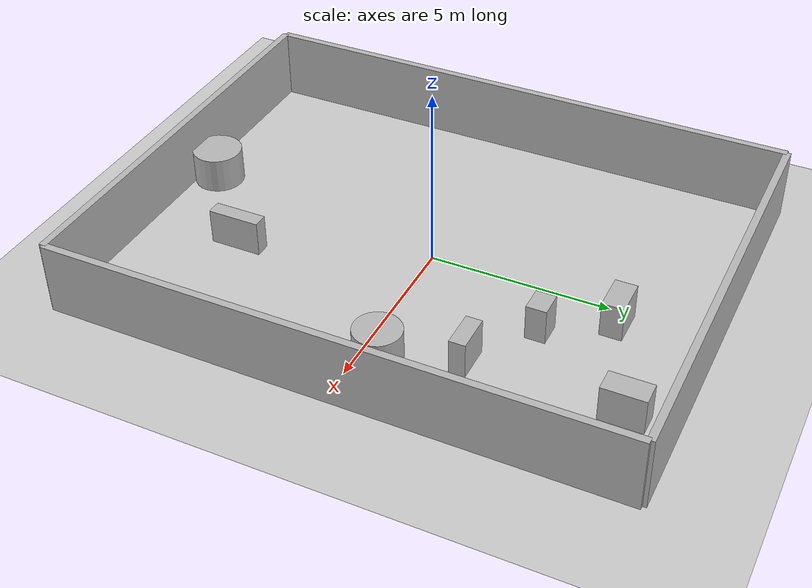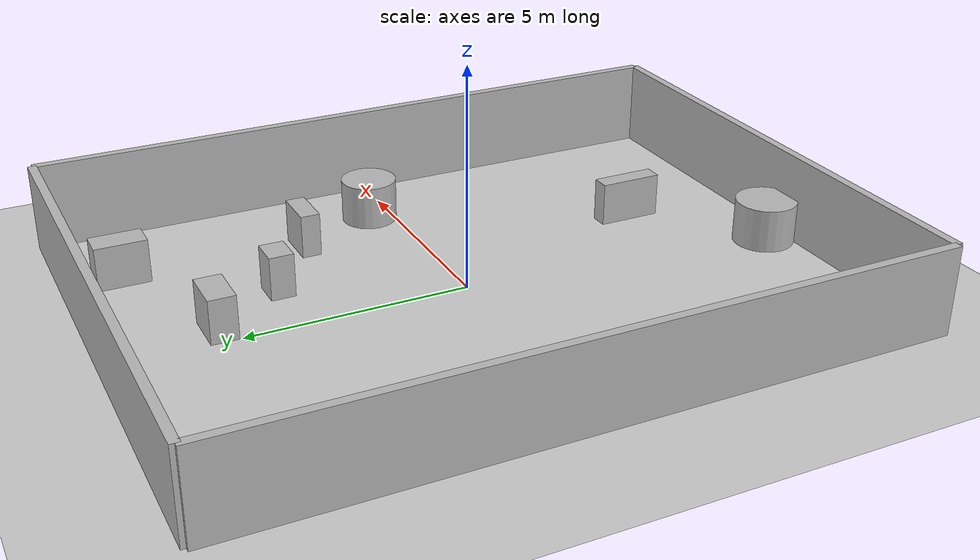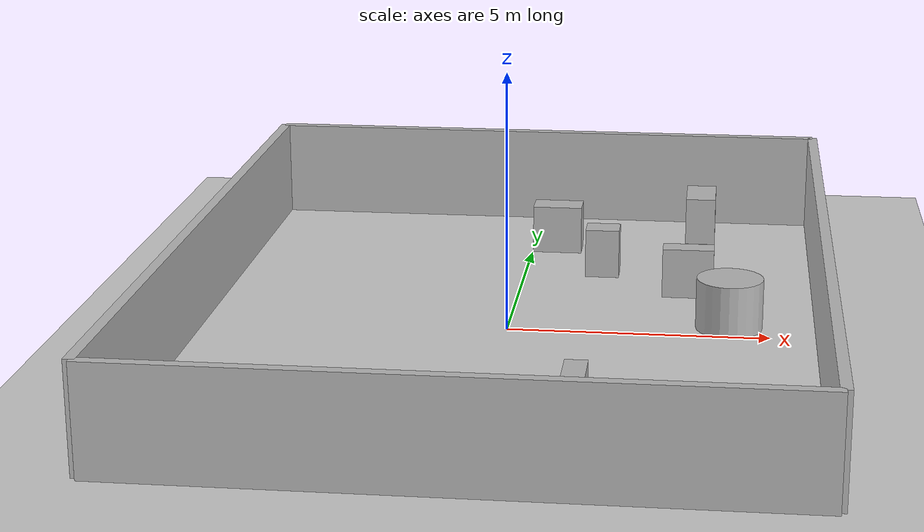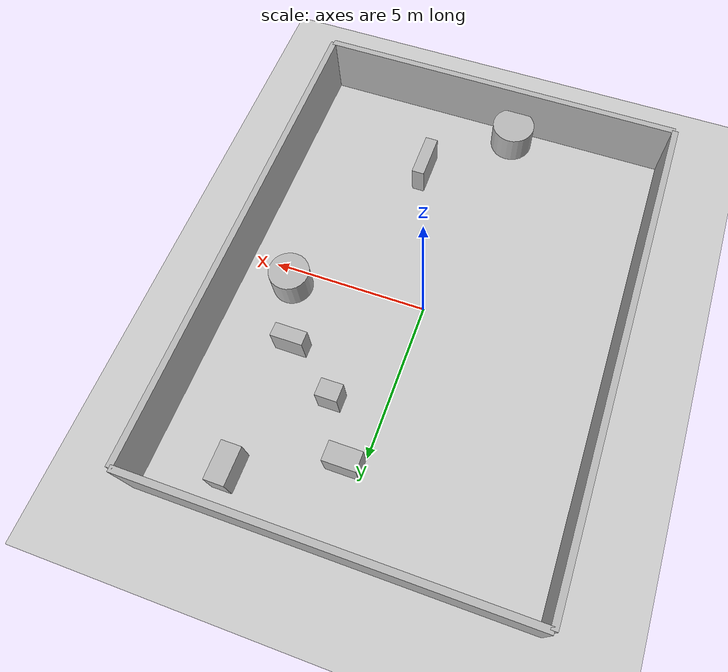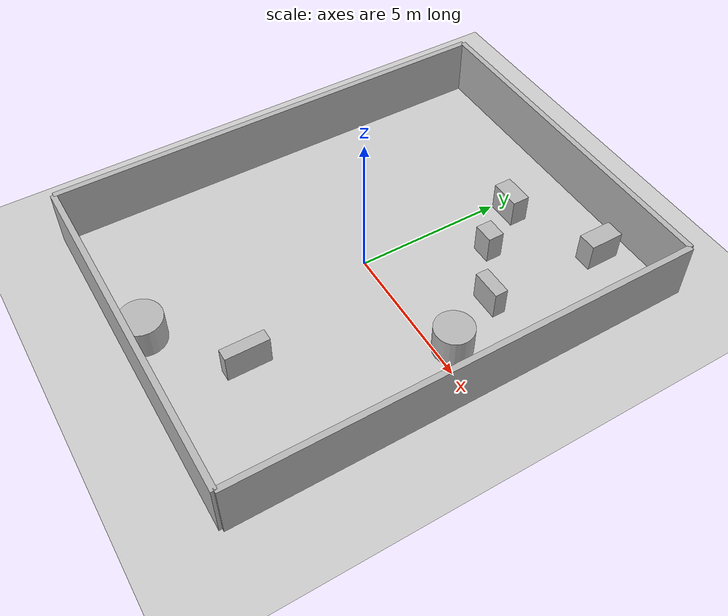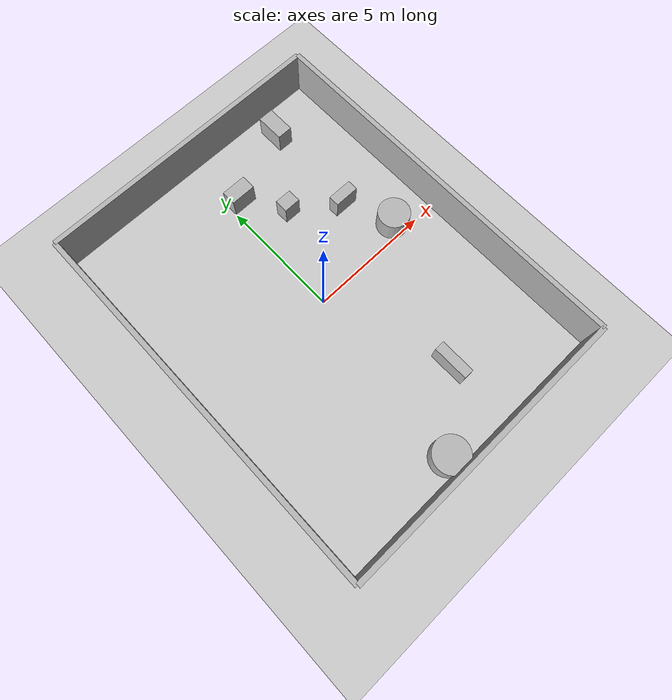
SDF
<?xml version="1.0"?>
<sdf version="1.6">
  <world name="env_91">

    <include><uri>model://ground_plane</uri></include>
    <include><uri>model://sun</uri></include>

    <!-- WALLS -->
    <model name="wall_north"><static>true</static><pose>0 7.816999190220784 1 0 0 0</pose>
      <link name="link"><collision name="collision">
        <geometry><box><size>11.921241175624603 0.2 2</size></box></geometry>
      </collision><visual name="visual">
        <geometry><box><size>11.921241175624603 0.2 2</size></box></geometry>
      </visual></link>
    </model>

    <model name="wall_south"><static>true</static><pose>0 -7.816999190220784 1 0 0 0</pose>
      <link name="link"><collision name="collision">
        <geometry><box><size>11.921241175624603 0.2 2</size></box></geometry>
      </collision><visual name="visual">
        <geometry><box><size>11.921241175624603 0.2 2</size></box></geometry>
      </visual></link>
    </model>

    <model name="wall_east"><static>true</static><pose>5.9606205878123015 0 1 0 0 1.57</pose>
      <link name="link"><collision name="collision">
        <geometry><box><size>15.633998380441568 0.2 2</size></box></geometry>
      </collision><visual name="visual">
        <geometry><box><size>15.633998380441568 0.2 2</size></box></geometry>
      </visual></link>
    </model>

    <model name="wall_west"><static>true</static><pose>-5.9606205878123015 0 1 0 0 1.57</pose>
      <link name="link"><collision name="collision">
        <geometry><box><size>15.633998380441568 0.2 2</size></box></geometry>
      </collision><visual name="visual">
        <geometry><box><size>15.633998380441568 0.2 2</size></box></geometry>
      </visual></link>
    </model>

    <!-- SENSOR -->

    <model name="lidar_sensor">
      <static>true</static>
      <pose>-0.4264690081206197 -6.522603781260327 0.4 0 0 0</pose>
      <link name="link">
        <sensor name="lidar" type="ray">
          <pose>0 0 0 0 0 0</pose>
          <visualize>true</visualize>
          <always_on>true</always_on>
          <update_rate>10</update_rate>
          <ray>
            <scan><horizontal>
              <samples>90</samples>
              <resolution>1</resolution>
              <min_angle>-3.14159</min_angle>
              <max_angle>3.14159</max_angle>
            </horizontal></scan>
            <range><min>0.15</min><max>20.0</max><resolution>0.01</resolution></range>
          </ray>
          <plugin name="lidar_plugin" filename="liblidar_plugin.so"/>
        </sensor>
      </link>
    </model>

    <!-- OBSTACLES -->

    <model name="obstacle_0">
      <static>true</static>
      <pose>1.5922123631173717 3.7047446139722737 0.5 0 0 0</pose>
      <link name="link">
        <collision name="collision">
          <geometry><box><size>0.69 0.55 1.0</size></box></geometry>
        </collision>
        <visual name="visual">
          <geometry><box><size>0.69 0.55 1.0</size></box></geometry>
        </visual>
      </link>
    </model>

    <model name="obstacle_1">
      <static>true</static>
      <pose>4.221341852427957 0.533931407768323 0.5 0 0 0</pose>
      <link name="link">
        <collision name="collision">
          <geometry><cylinder><radius>0.64</radius><length>1.0</length></cylinder></geometry>
        </collision>
        <visual name="visual">
          <geometry><cylinder><radius>0.64</radius><length>1.0</length></cylinder></geometry>
        </visual>
      </link>
    </model>

    <model name="obstacle_2">
      <static>true</static>
      <pose>3.383949427732186 2.474507719622446 0.5 0 0 0</pose>
      <link name="link">
        <collision name="collision">
          <geometry><box><size>1.02 0.44 1.0</size></box></geometry>
        </collision>
        <visual name="visual">
          <geometry><box><size>1.02 0.44 1.0</size></box></geometry>
        </visual>
      </link>
    </model>

    <model name="obstacle_3">
      <static>true</static>
      <pose>3.5621652146187115 6.595954262109384 0.5 0 0 0</pose>
      <link name="link">
        <collision name="collision">
          <geometry><box><size>0.63 1.16 1.0</size></box></geometry>
        </collision>
        <visual name="visual">
          <geometry><box><size>0.63 1.16 1.0</size></box></geometry>
        </visual>
      </link>
    </model>

    <model name="obstacle_4">
      <static>true</static>
      <pose>0.5235197749606062 5.359795224791595 0.5 0 0 0</pose>
      <link name="link">
        <collision name="collision">
          <geometry><box><size>1.03 0.6 1.0</size></box></geometry>
        </collision>
        <visual name="visual">
          <geometry><box><size>1.03 0.6 1.0</size></box></geometry>
        </visual>
      </link>
    </model>

    <model name="obstacle_5">
      <static>true</static>
      <pose>-0.8147578624520122 -7.16609844644819 0.5 0 0 0</pose>
      <link name="link">
        <collision name="collision">
          <geometry><cylinder><radius>0.7</radius><length>1.0</length></cylinder></geometry>
        </collision>
        <visual name="visual">
          <geometry><cylinder><radius>0.7</radius><length>1.0</length></cylinder></geometry>
        </visual>
      </link>
    </model>

    <model name="obstacle_6">
      <static>true</static>
      <pose>1.6542728211320448 -4.980077843358771 0.5 0 0 0</pose>
      <link name="link">
        <collision name="collision">
          <geometry><box><size>0.41 1.45 1.0</size></box></geometry>
        </collision>
        <visual name="visual">
          <geometry><box><size>0.41 1.45 1.0</size></box></geometry>
        </visual>
      </link>
    </model>

  </world>
</sdf>
